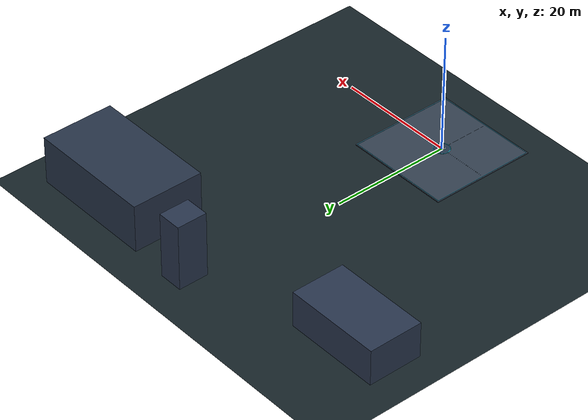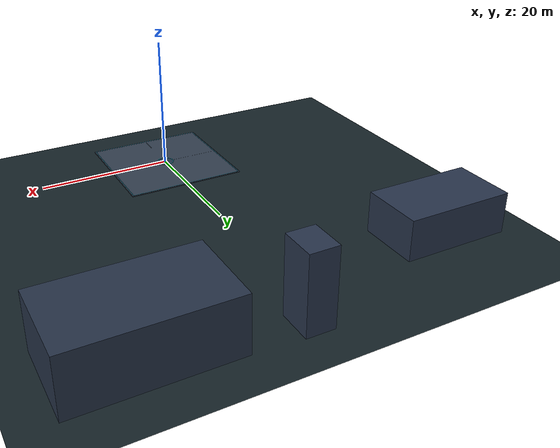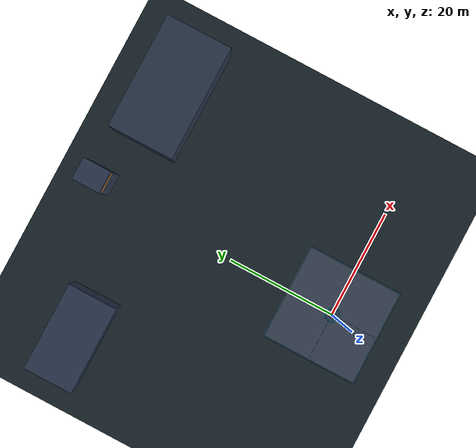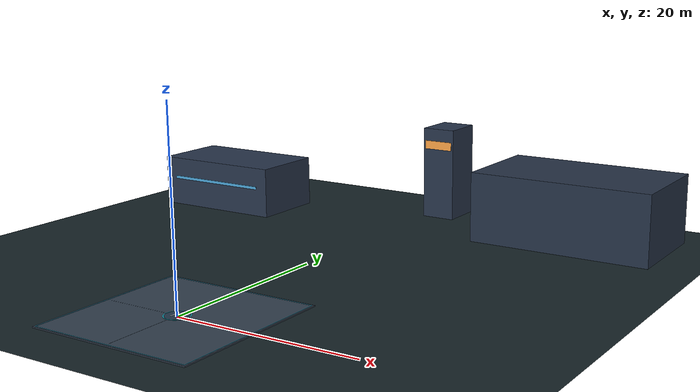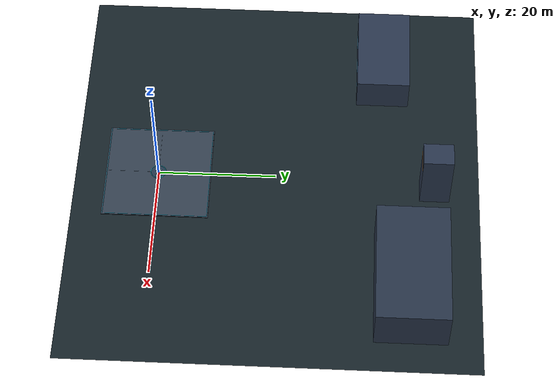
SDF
<?xml version="1.0"?>
<sdf version="1.9">
  <world name="swarm_world">
    <physics name="phase1_physics" type="ignored">
      <max_step_size>0.004</max_step_size>
      <real_time_factor>1.0</real_time_factor>
    </physics>
    <gravity>0 0 -9.81</gravity>
    <plugin filename="gz-sim-physics-system" name="gz::sim::systems::Physics"/>
    <plugin filename="gz-sim-user-commands-system" name="gz::sim::systems::UserCommands"/>
    <plugin filename="gz-sim-scene-broadcaster-system" name="gz::sim::systems::SceneBroadcaster"/>

    <scene>
      <ambient>0.42 0.46 0.56 1</ambient>
      <background>0.055 0.08 0.15 1</background>
      <shadows>true</shadows>
      <fog>
        <type>linear</type>
        <color>0.085 0.11 0.18 1</color>
        <start>45</start><end>140</end><density>0.005</density>
      </fog>
    </scene>
    <light name="sunset" type="directional">
      <pose>0 0 30 0 0 0</pose>
      <cast_shadows>true</cast_shadows>
      <diffuse>0.95 0.72 0.52 1</diffuse>
      <specular>0.3 0.25 0.2 1</specular>
      <direction>-0.7 0.35 -0.6</direction>
    </light>
    <light name="cool_fill" type="directional">
      <cast_shadows>false</cast_shadows>
      <diffuse>0.25 0.38 0.65 1</diffuse>
      <specular>0.1 0.18 0.3 1</specular>
      <direction>0.5 -0.3 -0.8</direction>
    </light>

    <gui fullscreen="false">
      <plugin filename="MinimalScene" name="3D View">
        <gz-gui>
          <title>Drone Swarm · Phase 1</title>
          <property type="bool" key="showTitleBar">false</property>
          <property type="string" key="state">docked</property>
        </gz-gui>
        <engine>ogre2</engine>
        <scene>scene</scene>
        <ambient_light>0.42 0.46 0.56</ambient_light>
        <background_color>0.055 0.08 0.15</background_color>
        <camera_pose>8 -10 7 0 0.34 2.2455</camera_pose>
      </plugin>
      <plugin filename="GzSceneManager" name="Scene Manager">
        <gz-gui>
          <property type="string" key="state">floating</property>
          <property type="bool" key="showTitleBar">false</property>
          <property type="double" key="width">5</property>
          <property type="double" key="height">5</property>
        </gz-gui>
      </plugin>
      <plugin filename="InteractiveViewControl" name="Interactive view control">
        <gz-gui>
          <property type="string" key="state">floating</property>
          <property type="bool" key="showTitleBar">false</property>
          <property type="double" key="width">5</property>
          <property type="double" key="height">5</property>
        </gz-gui>
      </plugin>
      <plugin filename="CameraTracking" name="Camera Tracking">
        <gz-gui>
          <property type="string" key="state">floating</property>
          <property type="bool" key="showTitleBar">false</property>
          <property type="double" key="width">5</property>
          <property type="double" key="height">5</property>
        </gz-gui>
      </plugin>
      <plugin filename="WorldControl" name="World control">
        <gz-gui>
          <property type="string" key="state">floating</property>
          <property type="bool" key="showTitleBar">false</property>
          <property type="bool" key="resizable">false</property>
          <property type="double" key="height">72</property>
          <property type="double" key="z">1</property>
          <anchors target="3D View">
            <line own="left" target="left"/><line own="bottom" target="bottom"/>
          </anchors>
        </gz-gui>
        <play_pause>true</play_pause><step>true</step>
        <start_paused>false</start_paused><use_event>true</use_event>
      </plugin>
      <plugin filename="WorldStats" name="World stats">
        <gz-gui>
          <property type="string" key="state">floating</property>
          <property type="bool" key="showTitleBar">false</property>
          <property type="bool" key="resizable">false</property>
          <property type="double" key="height">110</property>
          <property type="double" key="width">285</property>
          <property type="double" key="z">1</property>
          <anchors target="3D View">
            <line own="right" target="right"/><line own="bottom" target="bottom"/>
          </anchors>
        </gz-gui>
        <sim_time>true</sim_time><real_time>true</real_time>
        <real_time_factor>true</real_time_factor><iterations>true</iterations>
      </plugin>
    </gui>

    <model name="ground">
      <static>true</static>
      <link name="ground_link">
        <collision name="ground_collision">
          <geometry><plane><normal>0 0 1</normal><size>200 200</size></plane></geometry>
        </collision>
        <visual name="ground_visual">
          <geometry><plane><normal>0 0 1</normal><size>200 200</size></plane></geometry>
          <material><ambient>0.055 0.09 0.11 1</ambient><diffuse>0.09 0.14 0.16 1</diffuse></material>
        </visual>
      </link>
    </model>

    <model name="flight_deck">
      <static>true</static>
      <link name="deck_link">
        <collision name="deck_collision">
          <pose>0 0 0.06 0 0 0</pose>
          <geometry><box><size>18 18 0.12</size></box></geometry>
        </collision>
        <visual name="deck_surface">
          <pose>0 0 0.06 0 0 0</pose>
          <geometry><box><size>18 18 0.12</size></box></geometry>
          <material><ambient>0.12 0.16 0.2 1</ambient><diffuse>0.2 0.25 0.31 1</diffuse></material>
        </visual>
        <visual name="north_edge">
          <pose>0 8.8 0.125 0 0 0</pose>
          <geometry><box><size>17.6 0.07 0.008</size></box></geometry>
          <material><diffuse>0.15 0.75 0.9 1</diffuse><emissive>0.05 0.45 0.6 1</emissive></material>
        </visual>
        <visual name="south_edge">
          <pose>0 -8.8 0.125 0 0 0</pose>
          <geometry><box><size>17.6 0.07 0.008</size></box></geometry>
          <material><diffuse>0.15 0.75 0.9 1</diffuse><emissive>0.05 0.45 0.6 1</emissive></material>
        </visual>
        <visual name="east_edge">
          <pose>8.8 0 0.125 0 0 0</pose>
          <geometry><box><size>0.07 17.6 0.008</size></box></geometry>
          <material><diffuse>0.15 0.75 0.9 1</diffuse><emissive>0.05 0.45 0.6 1</emissive></material>
        </visual>
        <visual name="west_edge">
          <pose>-8.8 0 0.125 0 0 0</pose>
          <geometry><box><size>0.07 17.6 0.008</size></box></geometry>
          <material><diffuse>0.15 0.75 0.9 1</diffuse><emissive>0.05 0.45 0.6 1</emissive></material>
        </visual>
        <visual name="x_reference">
          <pose>0 0 0.127 0 0 0</pose>
          <geometry><box><size>17 0.028 0.005</size></box></geometry>
          <material><ambient>0.3 0.38 0.46 1</ambient><diffuse>0.4 0.5 0.6 1</diffuse></material>
        </visual>
        <visual name="y_reference">
          <pose>0 0 0.127 0 0 0</pose>
          <geometry><box><size>0.028 17 0.005</size></box></geometry>
          <material><ambient>0.3 0.38 0.46 1</ambient><diffuse>0.4 0.5 0.6 1</diffuse></material>
        </visual>
        <visual name="landing_pad_border">
          <pose>0 0 0.135 0 0 0</pose>
          <geometry><cylinder><radius>1.35</radius><length>0.012</length></cylinder></geometry>
          <material><ambient>0.08 0.7 0.8 1</ambient><diffuse>0.1 0.85 0.95 1</diffuse><emissive>0.03 0.3 0.35 1</emissive></material>
        </visual>
        <visual name="landing_pad_fill">
          <pose>0 0 0.144 0 0 0</pose>
          <geometry><cylinder><radius>1.25</radius><length>0.009</length></cylinder></geometry>
          <material><ambient>0.1 0.16 0.22 1</ambient><diffuse>0.14 0.22 0.3 1</diffuse></material>
        </visual>
        <visual name="landing_mark_left">
          <pose>-0.38 0 0.154 0 0 0</pose>
          <geometry><box><size>0.13 1.10 0.008</size></box></geometry>
          <material><diffuse>0.9 0.96 1 1</diffuse><emissive>0.3 0.38 0.45 1</emissive></material>
        </visual>
        <visual name="landing_mark_right">
          <pose>0.38 0 0.154 0 0 0</pose>
          <geometry><box><size>0.13 1.10 0.008</size></box></geometry>
          <material><diffuse>0.9 0.96 1 1</diffuse><emissive>0.3 0.38 0.45 1</emissive></material>
        </visual>
        <visual name="landing_mark_center">
          <pose>0 0 0.154 0 0 0</pose>
          <geometry><box><size>0.76 0.13 0.008</size></box></geometry>
          <material><diffuse>0.9 0.96 1 1</diffuse><emissive>0.3 0.38 0.45 1</emissive></material>
        </visual>
      </link>
    </model>

    <!-- Distant silhouettes give a horizon without model downloads or sensors. -->
    <model name="distant_hangars">
      <static>true</static>
      <link name="hangars_link">
        <visual name="hangar_west">
          <pose>-24 38 3 0 0 0</pose>
          <geometry><box><size>16 9 6</size></box></geometry>
          <material><ambient>0.12 0.16 0.24 1</ambient><diffuse>0.16 0.21 0.3 1</diffuse></material>
        </visual>
        <visual name="hangar_east">
          <pose>21 43 4 0 0 0</pose>
          <geometry><box><size>21 12 8</size></box></geometry>
          <material><ambient>0.10 0.14 0.21 1</ambient><diffuse>0.15 0.2 0.28 1</diffuse></material>
        </visual>
        <visual name="control_tower">
          <pose>2 47 5.5 0 0 0</pose>
          <geometry><box><size>4 5 11</size></box></geometry>
          <material><ambient>0.1 0.14 0.22 1</ambient><diffuse>0.16 0.21 0.3 1</diffuse></material>
        </visual>
        <visual name="tower_windows">
          <pose>2 44.48 9 0 0 0</pose>
          <geometry><box><size>3.5 0.04 1.0</size></box></geometry>
          <material><diffuse>1 0.65 0.28 1</diffuse><emissive>0.55 0.3 0.08 1</emissive></material>
        </visual>
        <visual name="hangar_window_west">
          <pose>-24 33.48 3.5 0 0 0</pose>
          <geometry><box><size>13 0.04 0.35</size></box></geometry>
          <material><diffuse>0.3 0.65 0.85 1</diffuse><emissive>0.1 0.28 0.4 1</emissive></material>
        </visual>
      </link>
    </model>
  </world>
</sdf>
